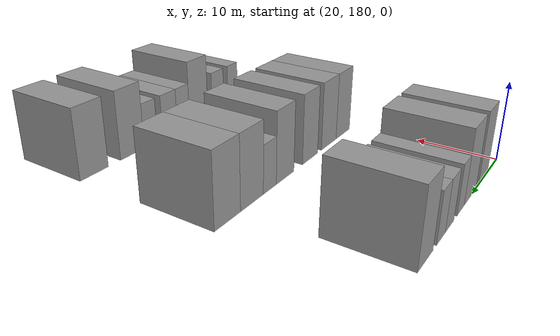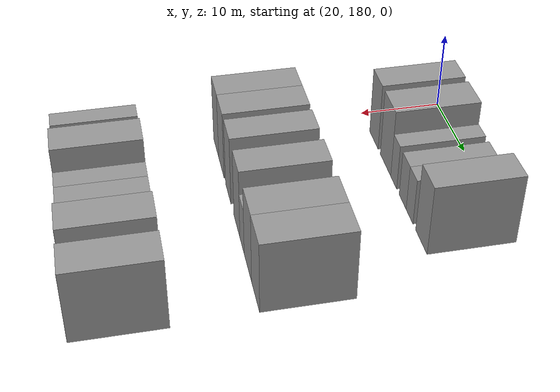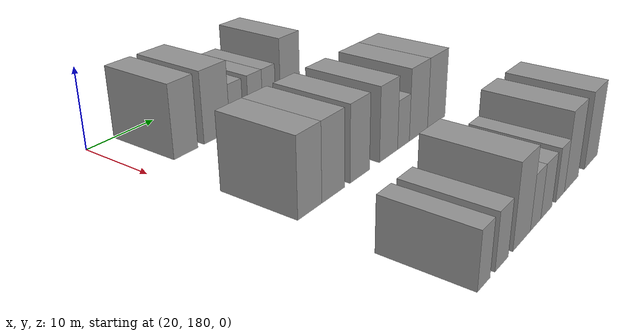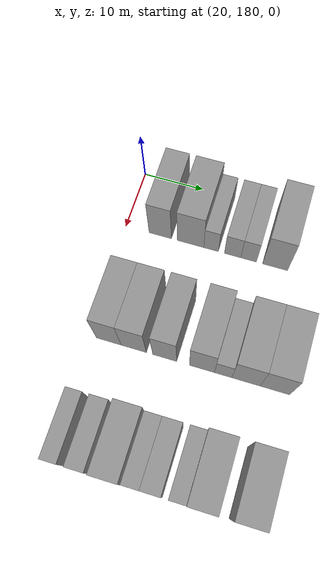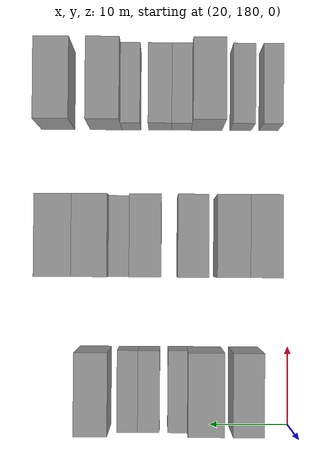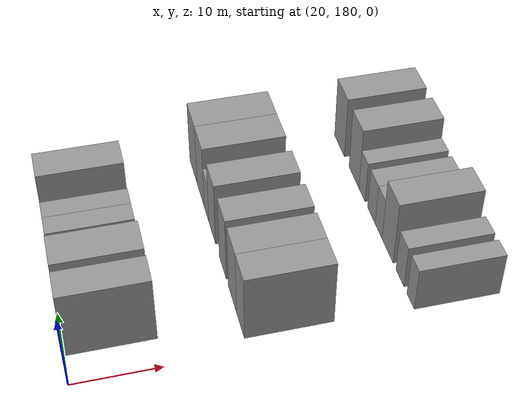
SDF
<sdf version="1.6">
 <world name="default">
  <model name="building_97">
   <static>1</static>
   <pose>25.0000 185.7977 0 0.000000 0.000000 0.000000</pose>
   <link name="link">
    <pose>0 0 4.50 0 0 0</pose>
    <collision name="collision"><geometry><box><size>10.0000 3.7378 9.0000</size></box></geometry></collision>
    <visual name="visual">
     <cast_shadows>0</cast_shadows>
     <geometry><box><size>10.0000 3.7378 9.0000</size></box></geometry>
     <material>
      <script>
       <uri>model://grey_wall/materials/scripts</uri>
       <uri>model://grey_wall/materials/textures</uri>
       <name>vrc/grey_wall</name>
      </script>
     </material>
    </visual>
   </link>
  </model>
  <model name="building_98">
   <static>1</static>
   <pose>25.0000 190.8588 0 0.000000 0.000000 0.000000</pose>
   <link name="link">
    <pose>0 0 4.50 0 0 0</pose>
    <collision name="collision"><geometry><box><size>10.0000 4.3843 9.0000</size></box></geometry></collision>
    <visual name="visual">
     <cast_shadows>0</cast_shadows>
     <geometry><box><size>10.0000 4.3843 9.0000</size></box></geometry>
     <material>
      <script>
       <uri>model://grey_wall/materials/scripts</uri>
       <uri>model://grey_wall/materials/textures</uri>
       <name>vrc/grey_wall</name>
      </script>
     </material>
    </visual>
   </link>
  </model>
  <model name="building_99">
   <static>1</static>
   <pose>25.0000 194.2553 0 0.000000 0.000000 0.000000</pose>
   <link name="link">
    <pose>0 0 3.00 0 0 0</pose>
    <collision name="collision"><geometry><box><size>10.0000 2.4088 6.0000</size></box></geometry></collision>
    <visual name="visual">
     <cast_shadows>0</cast_shadows>
     <geometry><box><size>10.0000 2.4088 6.0000</size></box></geometry>
     <material>
      <script>
       <uri>model://grey_wall/materials/scripts</uri>
       <uri>model://grey_wall/materials/textures</uri>
       <name>vrc/grey_wall</name>
      </script>
     </material>
    </visual>
   </link>
  </model>
  <model name="building_100">
   <static>1</static>
   <pose>25.0000 197.8041 0 0.000000 0.000000 0.000000</pose>
   <link name="link">
    <pose>0 0 3.00 0 0 0</pose>
    <collision name="collision"><geometry><box><size>10.0000 2.6887 6.0000</size></box></geometry></collision>
    <visual name="visual">
     <cast_shadows>0</cast_shadows>
     <geometry><box><size>10.0000 2.6887 6.0000</size></box></geometry>
     <material>
      <script>
       <uri>model://grey_wall/materials/scripts</uri>
       <uri>model://grey_wall/materials/textures</uri>
       <name>vrc/grey_wall</name>
      </script>
     </material>
    </visual>
   </link>
  </model>
  <model name="building_101">
   <static>1</static>
   <pose>25.0000 200.4228 0 0.000000 0.000000 0.000000</pose>
   <link name="link">
    <pose>0 0 3.00 0 0 0</pose>
    <collision name="collision"><geometry><box><size>10.0000 2.5487 6.0000</size></box></geometry></collision>
    <visual name="visual">
     <cast_shadows>0</cast_shadows>
     <geometry><box><size>10.0000 2.5487 6.0000</size></box></geometry>
     <material>
      <script>
       <uri>model://grey_wall/materials/scripts</uri>
       <uri>model://grey_wall/materials/textures</uri>
       <name>vrc/grey_wall</name>
      </script>
     </material>
    </visual>
   </link>
  </model>
  <model name="building_102">
   <static>1</static>
   <pose>25.0000 204.7182 0 0.000000 0.000000 0.000000</pose>
   <link name="link">
    <pose>0 0 4.50 0 0 0</pose>
    <collision name="collision"><geometry><box><size>10.0000 4.0421 9.0000</size></box></geometry></collision>
    <visual name="visual">
     <cast_shadows>0</cast_shadows>
     <geometry><box><size>10.0000 4.0421 9.0000</size></box></geometry>
     <material>
      <script>
       <uri>model://grey_wall/materials/scripts</uri>
       <uri>model://grey_wall/materials/textures</uri>
       <name>vrc/grey_wall</name>
      </script>
     </material>
    </visual>
   </link>
  </model>
  <model name="building_212">
   <static>1</static>
   <pose>44.0000 183.6826 0 0.000000 0.000000 0.000000</pose>
   <link name="link">
    <pose>0 0 4.50 0 0 0</pose>
    <collision name="collision"><geometry><box><size>10.0000 3.9062 9.0000</size></box></geometry></collision>
    <visual name="visual">
     <cast_shadows>0</cast_shadows>
     <geometry><box><size>10.0000 3.9062 9.0000</size></box></geometry>
     <material>
      <script>
       <uri>model://grey_wall/materials/scripts</uri>
       <uri>model://grey_wall/materials/textures</uri>
       <name>vrc/grey_wall</name>
      </script>
     </material>
    </visual>
   </link>
  </model>
  <model name="building_213">
   <static>1</static>
   <pose>44.0000 187.6325 0 0.000000 0.000000 0.000000</pose>
   <link name="link">
    <pose>0 0 4.50 0 0 0</pose>
    <collision name="collision"><geometry><box><size>10.0000 3.9936 9.0000</size></box></geometry></collision>
    <visual name="visual">
     <cast_shadows>0</cast_shadows>
     <geometry><box><size>10.0000 3.9936 9.0000</size></box></geometry>
     <material>
      <script>
       <uri>model://grey_wall/materials/scripts</uri>
       <uri>model://grey_wall/materials/textures</uri>
       <name>vrc/grey_wall</name>
      </script>
     </material>
    </visual>
   </link>
  </model>
  <model name="building_214">
   <static>1</static>
   <pose>44.0000 192.4968 0 0.000000 0.000000 0.000000</pose>
   <link name="link">
    <pose>0 0 4.50 0 0 0</pose>
    <collision name="collision"><geometry><box><size>10.0000 3.7351 9.0000</size></box></geometry></collision>
    <visual name="visual">
     <cast_shadows>0</cast_shadows>
     <geometry><box><size>10.0000 3.7351 9.0000</size></box></geometry>
     <material>
      <script>
       <uri>model://grey_wall/materials/scripts</uri>
       <uri>model://grey_wall/materials/textures</uri>
       <name>vrc/grey_wall</name>
      </script>
     </material>
    </visual>
   </link>
  </model>
  <model name="building_215">
   <static>1</static>
   <pose>44.0000 198.2891 0 0.000000 0.000000 0.000000</pose>
   <link name="link">
    <pose>0 0 4.50 0 0 0</pose>
    <collision name="collision"><geometry><box><size>10.0000 3.8494 9.0000</size></box></geometry></collision>
    <visual name="visual">
     <cast_shadows>0</cast_shadows>
     <geometry><box><size>10.0000 3.8494 9.0000</size></box></geometry>
     <material>
      <script>
       <uri>model://grey_wall/materials/scripts</uri>
       <uri>model://grey_wall/materials/textures</uri>
       <name>vrc/grey_wall</name>
      </script>
     </material>
    </visual>
   </link>
  </model>
  <model name="building_216">
   <static>1</static>
   <pose>44.0000 201.5359 0 0.000000 0.000000 0.000000</pose>
   <link name="link">
    <pose>0 0 3.00 0 0 0</pose>
    <collision name="collision"><geometry><box><size>10.0000 2.6443 6.0000</size></box></geometry></collision>
    <visual name="visual">
     <cast_shadows>0</cast_shadows>
     <geometry><box><size>10.0000 2.6443 6.0000</size></box></geometry>
     <material>
      <script>
       <uri>model://grey_wall/materials/scripts</uri>
       <uri>model://grey_wall/materials/textures</uri>
       <name>vrc/grey_wall</name>
      </script>
     </material>
    </visual>
   </link>
  </model>
  <model name="building_217">
   <static>1</static>
   <pose>44.0000 205.0176 0 0.000000 0.000000 0.000000</pose>
   <link name="link">
    <pose>0 0 4.50 0 0 0</pose>
    <collision name="collision"><geometry><box><size>10.0000 4.3190 9.0000</size></box></geometry></collision>
    <visual name="visual">
     <cast_shadows>0</cast_shadows>
     <geometry><box><size>10.0000 4.3190 9.0000</size></box></geometry>
     <material>
      <script>
       <uri>model://grey_wall/materials/scripts</uri>
       <uri>model://grey_wall/materials/textures</uri>
       <name>vrc/grey_wall</name>
      </script>
     </material>
    </visual>
   </link>
  </model>
  <model name="building_218">
   <static>1</static>
   <pose>44.0000 209.4158 0 0.000000 0.000000 0.000000</pose>
   <link name="link">
    <pose>0 0 4.50 0 0 0</pose>
    <collision name="collision"><geometry><box><size>10.0000 4.4775 9.0000</size></box></geometry></collision>
    <visual name="visual">
     <cast_shadows>0</cast_shadows>
     <geometry><box><size>10.0000 4.4775 9.0000</size></box></geometry>
     <material>
      <script>
       <uri>model://grey_wall/materials/scripts</uri>
       <uri>model://grey_wall/materials/textures</uri>
       <name>vrc/grey_wall</name>
      </script>
     </material>
    </visual>
   </link>
  </model>
  <model name="building_329">
   <static>1</static>
   <pose>63.0000 182.5510 0 0.000000 0.000000 0.000000</pose>
   <link name="link">
    <pose>0 0 3.00 0 0 0</pose>
    <collision name="collision"><geometry><box><size>10.0000 2.4527 6.0000</size></box></geometry></collision>
    <visual name="visual">
     <cast_shadows>0</cast_shadows>
     <geometry><box><size>10.0000 2.4527 6.0000</size></box></geometry>
     <material>
      <script>
       <uri>model://grey_wall/materials/scripts</uri>
       <uri>model://grey_wall/materials/textures</uri>
       <name>vrc/grey_wall</name>
      </script>
     </material>
    </visual>
   </link>
  </model>
  <model name="building_330">
   <static>1</static>
   <pose>63.0000 186.1634 0 0.000000 0.000000 0.000000</pose>
   <link name="link">
    <pose>0 0 3.00 0 0 0</pose>
    <collision name="collision"><geometry><box><size>10.0000 2.7721 6.0000</size></box></geometry></collision>
    <visual name="visual">
     <cast_shadows>0</cast_shadows>
     <geometry><box><size>10.0000 2.7721 6.0000</size></box></geometry>
     <material>
      <script>
       <uri>model://grey_wall/materials/scripts</uri>
       <uri>model://grey_wall/materials/textures</uri>
       <name>vrc/grey_wall</name>
      </script>
     </material>
    </visual>
   </link>
  </model>
  <model name="building_331">
   <static>1</static>
   <pose>63.0000 190.5709 0 0.000000 0.000000 0.000000</pose>
   <link name="link">
    <pose>0 0 4.50 0 0 0</pose>
    <collision name="collision"><geometry><box><size>10.0000 4.0429 9.0000</size></box></geometry></collision>
    <visual name="visual">
     <cast_shadows>0</cast_shadows>
     <geometry><box><size>10.0000 4.0429 9.0000</size></box></geometry>
     <material>
      <script>
       <uri>model://grey_wall/materials/scripts</uri>
       <uri>model://grey_wall/materials/textures</uri>
       <name>vrc/grey_wall</name>
      </script>
     </material>
    </visual>
   </link>
  </model>
  <model name="building_332">
   <static>1</static>
   <pose>63.0000 193.8750 0 0.000000 0.000000 0.000000</pose>
   <link name="link">
    <pose>0 0 3.00 0 0 0</pose>
    <collision name="collision"><geometry><box><size>10.0000 2.5653 6.0000</size></box></geometry></collision>
    <visual name="visual">
     <cast_shadows>0</cast_shadows>
     <geometry><box><size>10.0000 2.5653 6.0000</size></box></geometry>
     <material>
      <script>
       <uri>model://grey_wall/materials/scripts</uri>
       <uri>model://grey_wall/materials/textures</uri>
       <name>vrc/grey_wall</name>
      </script>
     </material>
    </visual>
   </link>
  </model>
  <model name="building_333">
   <static>1</static>
   <pose>63.0000 196.6317 0 0.000000 0.000000 0.000000</pose>
   <link name="link">
    <pose>0 0 3.00 0 0 0</pose>
    <collision name="collision"><geometry><box><size>10.0000 2.9482 6.0000</size></box></geometry></collision>
    <visual name="visual">
     <cast_shadows>0</cast_shadows>
     <geometry><box><size>10.0000 2.9482 6.0000</size></box></geometry>
     <material>
      <script>
       <uri>model://grey_wall/materials/scripts</uri>
       <uri>model://grey_wall/materials/textures</uri>
       <name>vrc/grey_wall</name>
      </script>
     </material>
    </visual>
   </link>
  </model>
  <model name="building_334">
   <static>1</static>
   <pose>63.0000 200.3312 0 0.000000 0.000000 0.000000</pose>
   <link name="link">
    <pose>0 0 3.00 0 0 0</pose>
    <collision name="collision"><geometry><box><size>10.0000 2.4507 6.0000</size></box></geometry></collision>
    <visual name="visual">
     <cast_shadows>0</cast_shadows>
     <geometry><box><size>10.0000 2.4507 6.0000</size></box></geometry>
     <material>
      <script>
       <uri>model://grey_wall/materials/scripts</uri>
       <uri>model://grey_wall/materials/textures</uri>
       <name>vrc/grey_wall</name>
      </script>
     </material>
    </visual>
   </link>
  </model>
  <model name="building_335">
   <static>1</static>
   <pose>63.0000 203.6138 0 0.000000 0.000000 0.000000</pose>
   <link name="link">
    <pose>0 0 4.50 0 0 0</pose>
    <collision name="collision"><geometry><box><size>10.0000 4.1145 9.0000</size></box></geometry></collision>
    <visual name="visual">
     <cast_shadows>0</cast_shadows>
     <geometry><box><size>10.0000 4.1145 9.0000</size></box></geometry>
     <material>
      <script>
       <uri>model://grey_wall/materials/scripts</uri>
       <uri>model://grey_wall/materials/textures</uri>
       <name>vrc/grey_wall</name>
      </script>
     </material>
    </visual>
   </link>
  </model>
  <model name="building_336">
   <static>1</static>
   <pose>63.0000 209.8365 0 0.000000 0.000000 0.000000</pose>
   <link name="link">
    <pose>0 0 4.50 0 0 0</pose>
    <collision name="collision"><geometry><box><size>10.0000 4.3309 9.0000</size></box></geometry></collision>
    <visual name="visual">
     <cast_shadows>0</cast_shadows>
     <geometry><box><size>10.0000 4.3309 9.0000</size></box></geometry>
     <material>
      <script>
       <uri>model://grey_wall/materials/scripts</uri>
       <uri>model://grey_wall/materials/textures</uri>
       <name>vrc/grey_wall</name>
      </script>
     </material>
    </visual>
   </link>
  </model>
 </world>
</sdf>
